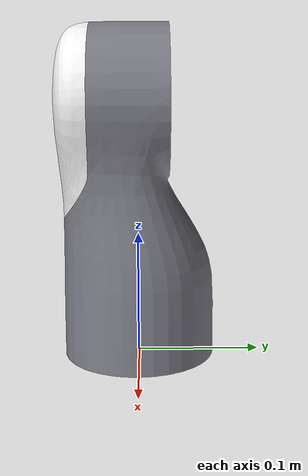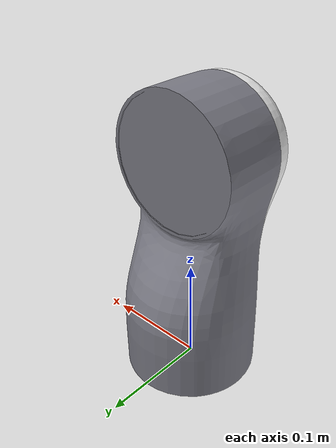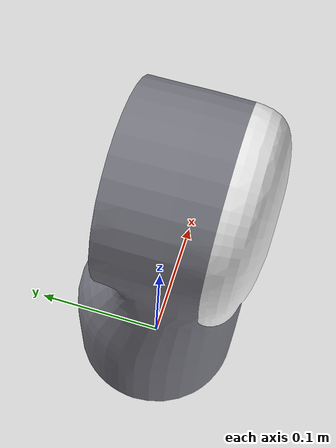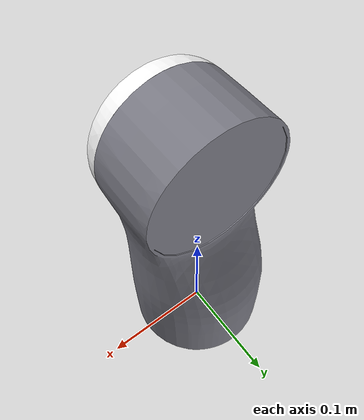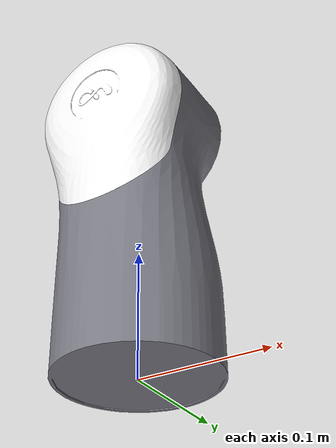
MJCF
<mujoco model="link1">
  <default>
    <default class="visual">
      <geom group="2" type="mesh" contype="0" conaffinity="0"/>
    </default>
    <default class="collision">
      <geom group="3" type="mesh"/>
    </default>
  </default>
  <asset>
    <material name="cover" specular="0.072304" shininess="0.092156872" rgba="0.969921 0.969921 0.969921 1.000000"/>
    <material name="robot" specular="0.600013" shininess="0.015686281" rgba="0.487364 0.487364 0.527718 1.000000"/>
    <mesh file="link1_0.obj"/>
    <mesh file="link1_1.obj"/>
  </asset>
  <worldbody>
    <body name="link1">
      <geom mesh="link1_0" material="cover" class="visual"/>
      <geom mesh="link1_1" material="robot" class="visual"/>
      <geom mesh="link1_0" class="collision"/>
      <geom mesh="link1_1" class="collision"/>
    </body>
  </worldbody>
</mujoco>
